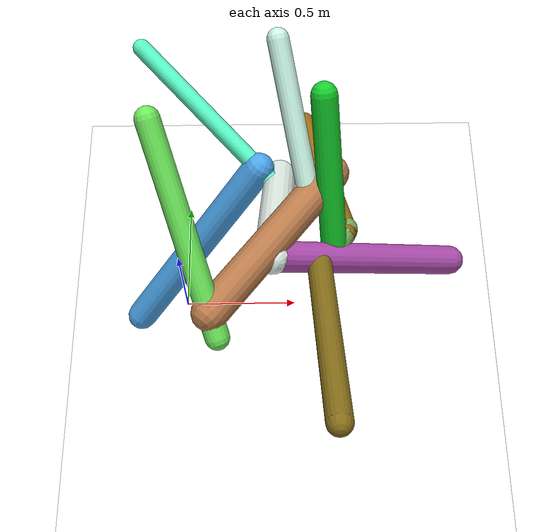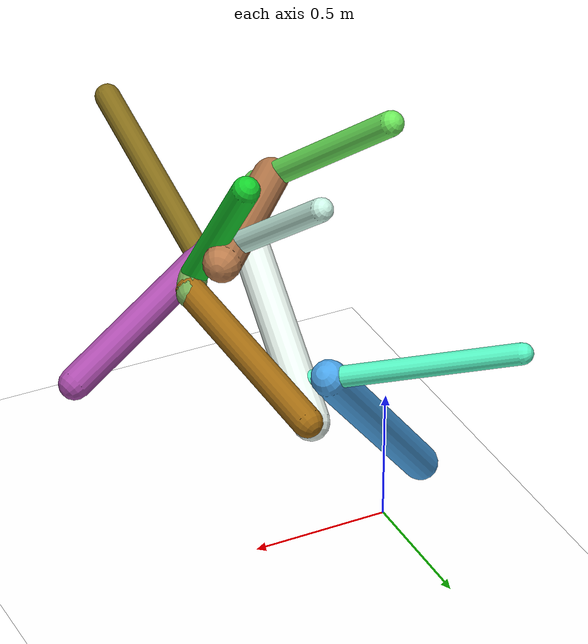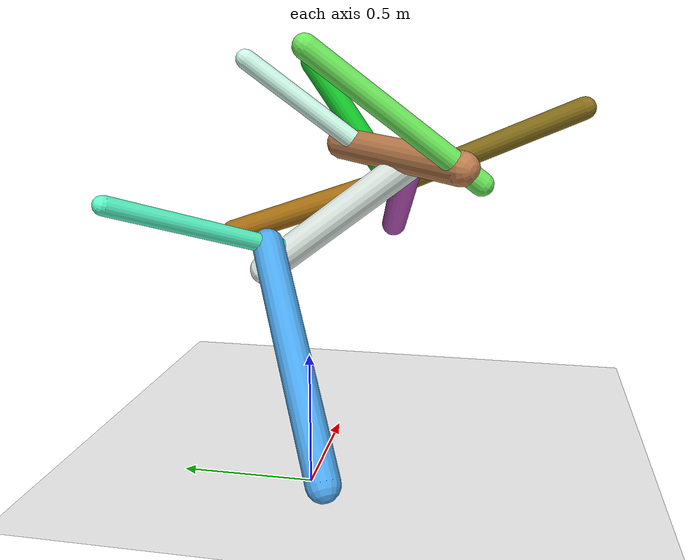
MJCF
<mujoco model="morphology">
  <option timestep="0.01"/>
  <default>
    <default class="/"/>
    <default class="0/"/>
    <default class="0/1/"/>
    <default class="0/1/2/"/>
    <default class="0/1/2/3/"/>
    <default class="0/1/2/3/4/"/>
    <default class="0/1/2/3/4/5/"/>
    <default class="0/1/2/6/"/>
    <default class="0/1/2/7/"/>
    <default class="0/1/2/7/8/"/>
    <default class="0/1/2/7/9/"/>
    <default class="0/1/10/"/>
  </default>
  <asset>
    <texture name="texplane" type="2d" builtin="checker" rgb1="0.10000000000000001 0.20000000000000001 0.29999999999999999" rgb2="0.20000000000000001 0.29999999999999999 0.40000000000000002" width="300" height="300"/>
    <material name="MatPlane" class="/" texture="texplane" texrepeat="20 20" specular="1" shininess="1" reflectance="0.5"/>
  </asset>
  <worldbody>
    <light name="//unnamed_light_0" class="/" directional="true" pos="0 0 1.5" dir="0 0 -1.3" cutoff="100" exponent="1" diffuse="1 1 1" specular="0.10000000000000001 0.10000000000000001 0.10000000000000001"/>
    <geom name="ground" class="/" type="plane" size="15 15 0.5" material="MatPlane" rgba="1 1 1 1"/>
    <site name="body" class="/" size="9.9999999999999995e-07 9.9999999999999995e-07 9.9999999999999995e-07" pos="0 0 1.5801696538925172"/>
    <body pos="0 0 1.5801696538925172" name="0/">
      <freejoint name="0/"/>
      <geom name="0/geom" class="0/" type="capsule" contype="1" conaffinity="1" condim="3" size="0.044297555068876893" rgba="0.42450269245042271 0.91084107984544094 0.35320539529626971 1" friction="0.59999999999999998 0.10000000000000001 0.10000000000000001" fromto="0 0 0 0.2144787199321827 -0.58867257807854623 -0.47273650652936755"/>
      <site name="0/end0" class="0/" size="0.0050000000000000001" pos="0.2144787199321827 -0.58867257807854623 -0.47273650652936755"/>
      <site name="0/attach1" class="0/" size="9.9999999999999995e-07 9.9999999999999995e-07 9.9999999999999995e-07" pos="0.1890787606928899 -0.51895815842324278 -0.41675198740985614"/>
      <body pos="0.1890787606928899 -0.51895815842324278 -0.41675198740985614" name="0/1/">
        <joint name="0/1/joint/" class="0/" type="hinge" axis="0 0 1" limited="true" range="-46.078746935685118 46.078746935685118"/>
        <geom name="0/1/geom" class="0/1/" type="capsule" contype="1" conaffinity="1" condim="3" size="0.065180068134264607" rgba="0.72930618972459327 0.48468645507517427 0.29947110568881763 1" friction="0.59999999999999998 0.10000000000000001 0.10000000000000001" fromto="0 0 0 0.43398202905534067 0.52190881946705492 0.04456705445582132"/>
        <site name="0/1/end1" class="0/1/" size="0.0050000000000000001" pos="0.43398202905534067 0.52190881946705492 0.04456705445582132"/>
        <site name="0/1/attach2" class="0/1/" size="9.9999999999999995e-07 9.9999999999999995e-07 9.9999999999999995e-07" pos="0.17027125064590978 0.20476900300969314 0.017485719665201599"/>
        <body pos="0.17027125064590978 0.20476900300969314 0.017485719665201599" name="0/1/2/">
          <joint name="0/1/2/joint/" class="0/1/" type="hinge" axis="-0.77004357828203596 0.63567786233705337 0.054282067768206925" limited="true" range="-43.136059658458763 43.136059658458763"/>
          <geom name="0/1/2/geom" class="0/1/2/" type="capsule" contype="1" conaffinity="1" condim="3" size="0.056438212679523467" rgba="0.67363835814563622 0.30003328803233698 0.67934222802046307 1" friction="0.59999999999999998 0.10000000000000001 0.10000000000000001" fromto="0 0 0 0.73980977536151582 0.1646884180587922 -0.39864730853241193"/>
          <site name="0/1/2/end2" class="0/1/2/" size="0.0050000000000000001" pos="0.73980977536151582 0.1646884180587922 -0.39864730853241193"/>
          <site name="0/1/2/attach3" class="0/1/2/" size="9.9999999999999995e-07 9.9999999999999995e-07 9.9999999999999995e-07" pos="0.045943889921832196 0.010227529836296656 -0.024756915454243345"/>
          <body pos="0.045943889921832196 0.010227529836296656 -0.024756915454243345" name="0/1/2/3/">
            <joint name="0/1/2/3/joint/" class="0/1/2/" type="hinge" axis="0 0.92423708995427978 0.38181906913202318" limited="true" range="-67.478005520123304 67.478005520123304"/>
            <geom name="0/1/2/3/geom" class="0/1/2/3/" type="capsule" contype="1" conaffinity="1" condim="3" size="0.064577491810513407" rgba="0.91436915907348615 0.96300149616743425 0.93766491831306209 1" friction="0.59999999999999998 0.10000000000000001 0.10000000000000001" fromto="0 0 0 0.03200810462720538 0.59747079085814248 -0.45675614530025616"/>
            <site name="0/1/2/3/end3" class="0/1/2/3/" size="0.0050000000000000001" pos="0.03200810462720538 0.59747079085814248 -0.45675614530025616"/>
            <site name="0/1/2/3/attach4" class="0/1/2/3/" size="9.9999999999999995e-07 9.9999999999999995e-07 9.9999999999999995e-07" pos="0.025843857226248854 0.48240750258819581 -0.36879224008529587"/>
            <body pos="0.025843857226248854 0.48240750258819581 -0.36879224008529587" name="0/1/2/3/4/">
              <joint name="0/1/2/3/4/joint/" class="0/1/2/3/" type="hinge" axis="-0.99909553263087958 0.033781284191004401 -0.025825210849578062" limited="true" range="-30.111000874979325 30.111000874979325"/>
              <geom name="0/1/2/3/4/geom" class="0/1/2/3/4/" type="capsule" contype="1" conaffinity="1" condim="3" size="0.0369133549647492" rgba="0.34492906444134308 0.97801646544652587 0.77945021885511989 1" friction="0.59999999999999998 0.10000000000000001 0.10000000000000001" fromto="0 0 0 -0.55459044823219794 0.52121296623485014 0.25926003786701912"/>
              <site name="0/1/2/3/4/end4" class="0/1/2/3/4/" size="0.0050000000000000001" pos="-0.55459044823219794 0.52121296623485014 0.25926003786701912"/>
              <site name="0/1/2/3/4/attach5" class="0/1/2/3/4/" size="9.9999999999999995e-07 9.9999999999999995e-07 9.9999999999999995e-07" pos="-0.080325212738777588 0.075490918620175734 0.037550444229094815"/>
              <body pos="-0.080325212738777588 0.075490918620175734 0.037550444229094815" name="0/1/2/3/4/5/">
                <joint name="0/1/2/3/4/5/joint/" class="0/1/2/3/4/" type="hinge" axis="-0.72402726387549943 -0.61758709772231524 -0.30719814109444921" limited="true" range="-40.98630334371304 40.98630334371304"/>
                <geom name="0/1/2/3/4/5/geom" class="0/1/2/3/4/5/" type="capsule" contype="1" conaffinity="1" condim="3" size="0.064348731137366305" rgba="0.2918712656721949 0.64506340240641402 0.91532139980792659 1" friction="0.59999999999999998 0.10000000000000001 0.10000000000000001" fromto="0 0 0 -0.54887570212744841 -0.34632671069586612 -0.7249046744869021"/>
                <site name="0/1/2/3/4/5/end5" class="0/1/2/3/4/5/" size="0.0050000000000000001" pos="-0.54887570212744841 -0.34632671069586612 -0.7249046744869021"/>
              </body>
            </body>
          </body>
          <site name="0/1/2/attach6" class="0/1/2/" size="9.9999999999999995e-07 9.9999999999999995e-07 9.9999999999999995e-07" pos="0.21480239183746105 0.047816975775522408 -0.11574650433685359"/>
          <body pos="0.21480239183746105 0.047816975775522408 -0.11574650433685359" name="0/1/2/6/">
            <joint name="0/1/2/6/joint/" class="0/1/2/" type="hinge" axis="-0.50367071387694395 0.32985185896316932 -0.7984444646443678" limited="true" range="-64.140410893389799 64.140410893389799"/>
            <geom name="0/1/2/6/geom" class="0/1/2/6/" type="capsule" contype="1" conaffinity="1" condim="3" size="0.045244953001183384" rgba="0.5155481644862806 0.42265588196080439 0.097367352847503197 1" friction="0.59999999999999998 0.10000000000000001 0.10000000000000001" fromto="0 0 0 0.034942209615196562 -0.69601314982166529 0.295185180415241"/>
            <site name="0/1/2/6/end6" class="0/1/2/6/" size="0.0050000000000000001" pos="0.034942209615196562 -0.69601314982166529 0.295185180415241"/>
          </body>
          <site name="0/1/2/attach7" class="0/1/2/" size="9.9999999999999995e-07 9.9999999999999995e-07 9.9999999999999995e-07" pos="0.2484837909052047 0.055314763065184826 -0.13389576315058158"/>
          <body pos="0.2484837909052047 0.055314763065184826 -0.13389576315058158" name="0/1/2/7/">
            <joint name="0/1/2/7/joint/" class="0/1/2/" type="hinge" axis="-0.50367071387694395 0.32985185896316932 -0.7984444646443678" limited="true" range="-57.841047662962907 57.841047662962907"/>
            <geom name="0/1/2/7/geom" class="0/1/2/7/" type="capsule" contype="1" conaffinity="1" condim="3" size="0.050759151286467089" rgba="0.47508367838327692 0.68576046212106645 0.34556485151990468 1" friction="0.59999999999999998 0.10000000000000001 0.10000000000000001" fromto="0 0 0 0.066275599740056146 0.1229498099834947 -0.018576335932099619"/>
            <site name="0/1/2/7/end7" class="0/1/2/7/" size="0.0050000000000000001" pos="0.066275599740056146 0.1229498099834947 -0.018576335932099619"/>
            <site name="0/1/2/7/attach8" class="0/1/2/7/" size="9.9999999999999995e-07 9.9999999999999995e-07 9.9999999999999995e-07" pos="0.024799385944997115 0.046006068622596236 -0.0069510004591573074"/>
            <body pos="0.024799385944997115 0.046006068622596236 -0.0069510004591573074" name="0/1/2/7/8/">
              <joint name="0/1/2/7/8/joint/" class="0/1/2/7/" type="hinge" axis="1.3877787807814457e-17 0.14939323404288046 0.988777862627501" limited="true" range="-63.117637424361504 63.117637424361504"/>
              <geom name="0/1/2/7/8/geom" class="0/1/2/7/8/" type="capsule" contype="1" conaffinity="1" condim="3" size="0.047513378482845384" rgba="0.08367908709782268 0.81617018659552032 0.17464523312211544 1" friction="0.59999999999999998 0.10000000000000001 0.10000000000000001" fromto="0 0 0 -0.0441595428928514 0.33214443921726211 0.49586407785588515"/>
              <site name="0/1/2/7/8/end8" class="0/1/2/7/8/" size="0.0050000000000000001" pos="-0.0441595428928514 0.33214443921726211 0.49586407785588515"/>
            </body>
            <site name="0/1/2/7/attach9" class="0/1/2/7/" size="9.9999999999999995e-07 9.9999999999999995e-07 9.9999999999999995e-07" pos="0.06136181055990457 0.11383409547667526 -0.017199053812163655"/>
            <body pos="0.06136181055990457 0.11383409547667526 -0.017199053812163655" name="0/1/2/7/9/">
              <geom name="0/1/2/7/9/geom" class="0/1/2/7/9/" type="capsule" contype="1" conaffinity="1" condim="3" size="0.052329886045442801" rgba="0.63386303720914983 0.41970990508176753 0.066406776909763487 1" friction="0.59999999999999998 0.10000000000000001 0.10000000000000001" fromto="0 0 0 -0.13384849399124055 0.60591744068274633 -0.1998020562289371"/>
              <site name="0/1/2/7/9/end9" class="0/1/2/7/9/" size="0.0050000000000000001" pos="-0.13384849399124055 0.60591744068274633 -0.1998020562289371"/>
            </body>
          </body>
        </body>
        <site name="0/1/attach10" class="0/1/" size="9.9999999999999995e-07 9.9999999999999995e-07 9.9999999999999995e-07" pos="0.35207190708196429 0.42340332338791659 0.036155432263961097"/>
        <body pos="0.35207190708196429 0.42340332338791659 0.036155432263961097" name="0/1/10/">
          <joint name="0/1/10/joint/" class="0/1/" type="hinge" axis="-6.9388939039072284e-18 -0.085082772325630496 0.99637388657741566" limited="true" range="-65.825213929640256 65.825213929640256"/>
          <geom name="0/1/10/geom" class="0/1/10/" type="capsule" contype="1" conaffinity="1" condim="3" size="0.040113923499311047" rgba="0.79743244507838396 0.96461062977042866 0.90332170249976929 1" friction="0.59999999999999998 0.10000000000000001 0.10000000000000001" fromto="0 0 0 -0.10741261753354181 0.44560827825393479 0.34633592182643813"/>
          <site name="0/1/10/end10" class="0/1/10/" size="0.0050000000000000001" pos="-0.10741261753354181 0.44560827825393479 0.34633592182643813"/>
        </body>
      </body>
      <camera name="0/iso" class="0/" mode="trackcom" pos="-2.2999999999999998 -2.2999999999999998 1" xyaxes="0.45000000000000001 -0.45000000000000001 0 0.29999999999999999 0.14999999999999999 0.93999999999999995"/>
    </body>
  </worldbody>
  <actuator>
    <motor name="0/1/motor" class="0/1/" ctrllimited="true" ctrlrange="-1 1" gear="55" joint="0/1/joint/"/>
    <motor name="0/1/2/motor" class="0/1/2/" ctrllimited="true" ctrlrange="-1 1" gear="57" joint="0/1/2/joint/"/>
    <motor name="0/1/2/3/motor" class="0/1/2/3/" ctrllimited="true" ctrlrange="-1 1" gear="59" joint="0/1/2/3/joint/"/>
    <motor name="0/1/2/3/4/motor" class="0/1/2/3/4/" ctrllimited="true" ctrlrange="-1 1" gear="94" joint="0/1/2/3/4/joint/"/>
    <motor name="0/1/2/3/4/5/motor" class="0/1/2/3/4/5/" ctrllimited="true" ctrlrange="-1 1" gear="55" joint="0/1/2/3/4/5/joint/"/>
    <motor name="0/1/2/6/motor" class="0/1/2/6/" ctrllimited="true" ctrlrange="-1 1" gear="89" joint="0/1/2/6/joint/"/>
    <motor name="0/1/2/7/motor" class="0/1/2/7/" ctrllimited="true" ctrlrange="-1 1" gear="50" joint="0/1/2/7/joint/"/>
    <motor name="0/1/2/7/8/motor" class="0/1/2/7/8/" ctrllimited="true" ctrlrange="-1 1" gear="82" joint="0/1/2/7/8/joint/"/>
    <motor name="0/1/10/motor" class="0/1/10/" ctrllimited="true" ctrlrange="-1 1" gear="91" joint="0/1/10/joint/"/>
  </actuator>
  <sensor>
    <subtreelinvel name="velocity" body="0/"/>
  </sensor>
</mujoco>
